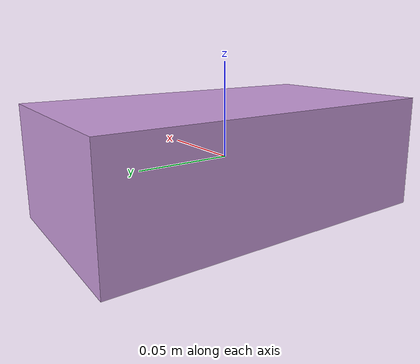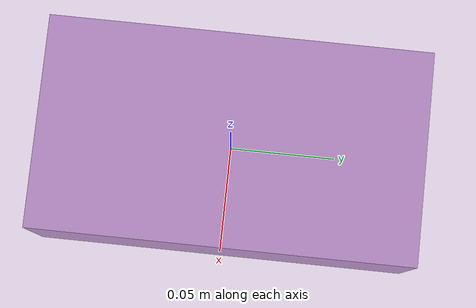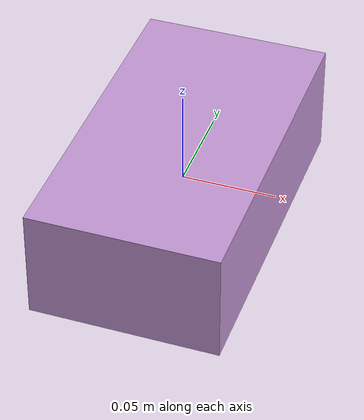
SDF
<?xml version="1.0"?>
<sdf version="1.7">
  <model name="block4">
    <pose> 0 0 0 0 0 0 </pose>
    <link name="block4_link">
      <inertial>
        <mass>1</mass>
        <inertia>
          <ixx>0.13159180035311765</ixx>
          <ixy>0.0</ixy>
          <ixz>0.0</ixz>
          <iyy>0.13658351124562848</iyy>
          <iyz>0.0</iyz>
          <izz>0.12739632822820277</izz>
        </inertia>
      </inertial>
      <collision name="collision">
        <geometry>
          <box>
            <size> 0.1 0.18 0.06 </size>
          </box>
        </geometry>
      </collision>
      <visual name="visual">
        <geometry>
          <box>
            <size> 0.1 0.18 0.06 </size>
          </box>
        </geometry>
        <material>
          <diffuse>0.7725490196078432 0.596078431372549 0.8392156862745098 1.0</diffuse>
        </material>
      </visual>
    </link>
  </model>
</sdf>
